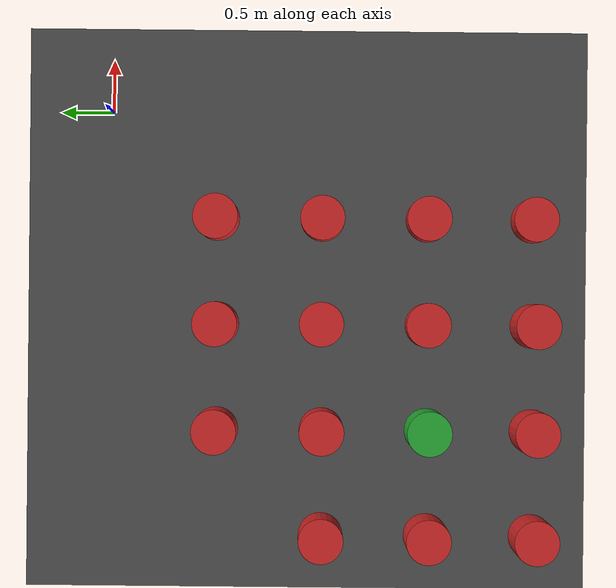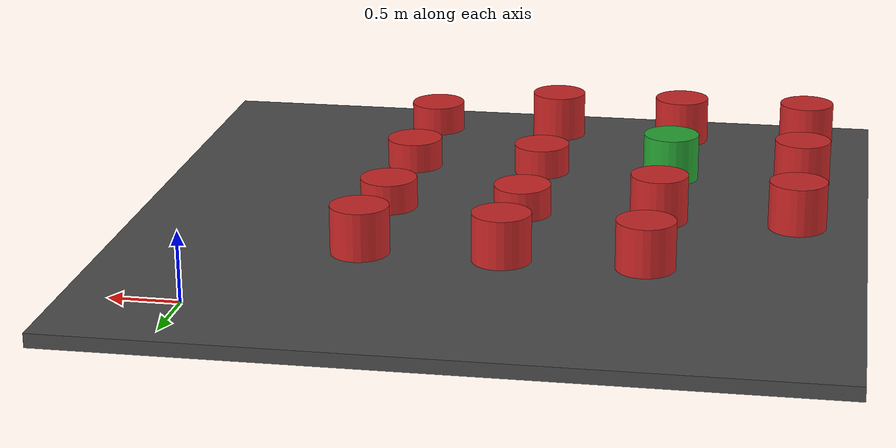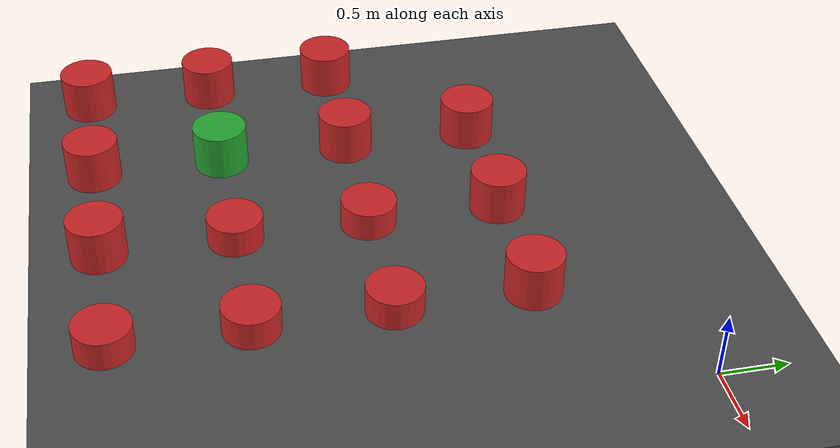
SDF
<sdf version="1.4">
 <world name="default">
  <light name="sun" type="directional">
   <pose>0 0 10 0 -0 0</pose>
   <diffuse>0.8 0.8 0.8 1</diffuse>
   <specular>0.2 0.2 0.2 1</specular>
   <attenuation>
    <range>1000</range>
    <constant>0.9</constant>
    <linear>0.01</linear>
    <quadratic>0.001</quadratic>
   </attenuation>
   <direction>-0.5 0.1 -0.9</direction>
  </light>
  <model name="ground_plane">
   <static>1</static>
   <link name="link">
    <collision name="collision">
     <geometry><plane><normal>0 0 1</normal><size>100 100</size></plane></geometry>
     <surface><friction><ode><mu>100</mu><mu2>50</mu2></ode></friction></surface>
    </collision>
    <visual name="visual">
     <cast_shadows>0</cast_shadows>
     <geometry><plane><normal>0 0 1</normal><size>100 100</size></plane></geometry>
     <material>
      <script><uri>file://media/materials/scripts/gazebo.material</uri><name>Gazebo/Grey</name></script>
     </material>
    </visual>
    <velocity_decay><linear>0</linear><angular>0</angular></velocity_decay>
   </link>
  </model>
  <physics type="ode">
   <max_step_size>0.001</max_step_size>
   <real_time_factor>1</real_time_factor>
   <real_time_update_rate>1000</real_time_update_rate>
   <gravity>0 0 -9.8</gravity>
  </physics>
  <scene><ambient>0.4 0.4 0.4 1</ambient><background>0.7 0.7 0.7 1</background><shadows>1</shadows></scene>
  <spherical_coordinates>
   <surface_model>EARTH_WGS84</surface_model>
   <latitude_deg>0</latitude_deg>
   <longitude_deg>0</longitude_deg>
   <elevation>0</elevation>
   <heading_deg>0</heading_deg>
  </spherical_coordinates>
  <model name="movable_2">
   <link name="link">
    <pose>0 0 0.23 0 -0 0</pose>
    <collision name="collision">
     <geometry><cylinder><radius>0.0001</radius><length>0.001</length></cylinder></geometry>
    </collision>
    <visual name="visual">
     <geometry><cylinder><radius>0.21</radius><length>0.45</length></cylinder></geometry>
     <material>
      <script><uri>file://media/materials/scripts/gazebo.material</uri><name>Gazebo/Red</name></script>
     </material>
    </visual>
    <velocity_decay><linear>0</linear><angular>0</angular></velocity_decay>
    <inertial>
     <inertia><ixx>1</ixx><ixy>0</ixy><ixz>0</ixz><iyy>1</iyy><iyz>0</iyz><izz>1</izz></inertia>
     <mass>1</mass>
    </inertial>
   </link>
   <pose>-1.00145 -4.00351 -0.179477 -0.015299 0.006306 -4.8e-05</pose>
   <static>0</static>
  </model>
  <model name="movable_3">
   <link name="link">
    <pose>0 0 0.23 0 -0 0</pose>
    <collision name="collision">
     <geometry><cylinder><radius>0.0001</radius><length>0.001</length></cylinder></geometry>
    </collision>
    <visual name="visual">
     <geometry><cylinder><radius>0.21</radius><length>0.45</length></cylinder></geometry>
     <material>
      <script><uri>file://media/materials/scripts/gazebo.material</uri><name>Gazebo/Red</name></script>
     </material>
    </visual>
    <velocity_decay><linear>0</linear><angular>0</angular></velocity_decay>
    <inertial>
     <inertia><ixx>1</ixx><ixy>0</ixy><ixz>0</ixz><iyy>1</iyy><iyz>0</iyz><izz>1</izz></inertia>
     <mass>1</mass>
    </inertial>
   </link>
   <pose>-1.00142 -3.00342 -0.179469 -0.014892 0.006172 -4.5e-05</pose>
   <static>0</static>
  </model>
  <model name="movable_4">
   <link name="link">
    <pose>0 0 0.23 0 -0 0</pose>
    <collision name="collision">
     <geometry><cylinder><radius>0.0001</radius><length>0.001</length></cylinder></geometry>
    </collision>
    <visual name="visual">
     <geometry><cylinder><radius>0.21</radius><length>0.45</length></cylinder></geometry>
     <material>
      <script><uri>file://media/materials/scripts/gazebo.material</uri><name>Gazebo/Red</name></script>
     </material>
    </visual>
    <velocity_decay><linear>0</linear><angular>0</angular></velocity_decay>
    <inertial>
     <inertia><ixx>1</ixx><ixy>0</ixy><ixz>0</ixz><iyy>1</iyy><iyz>0</iyz><izz>1</izz></inertia>
     <mass>1</mass>
    </inertial>
   </link>
   <pose>-1.00144 -2.00348 -0.179477 -0.015184 0.006271 -4.7e-05</pose>
   <static>0</static>
  </model>
  <model name="movable_0">
   <link name="link">
    <pose>0 0 0.23 0 -0 0</pose>
    <collision name="collision">
     <geometry><cylinder><radius>0.0001</radius><length>0.001</length></cylinder></geometry>
    </collision>
    <visual name="visual">
     <geometry><cylinder><radius>0.21</radius><length>0.45</length></cylinder></geometry>
     <material>
      <script><uri>file://media/materials/scripts/gazebo.material</uri><name>Gazebo/Red</name></script>
     </material>
    </visual>
    <velocity_decay><linear>0</linear><angular>0</angular></velocity_decay>
    <inertial>
     <inertia><ixx>1</ixx><ixy>0</ixy><ixz>0</ixz><iyy>1</iyy><iyz>0</iyz><izz>1</izz></inertia>
     <mass>1</mass>
    </inertial>
   </link>
   <pose>-2.00144 -3.00346 -0.179478 -0.015069 0.006274 -4.6e-05</pose>
   <static>0</static>
  </model>
  <model name="movable">
   <link name="link">
    <pose>0 0 0.23 0 -0 0</pose>
    <collision name="collision">
     <geometry><cylinder><radius>0.0001</radius><length>0.001</length></cylinder></geometry>
    </collision>
    <visual name="visual">
     <geometry><cylinder><radius>0.21</radius><length>0.45</length></cylinder></geometry>
     <material>
      <script><uri>file://media/materials/scripts/gazebo.material</uri><name>Gazebo/Red</name></script>
     </material>
    </visual>
    <velocity_decay><linear>0</linear><angular>0</angular></velocity_decay>
    <inertial>
     <inertia><ixx>1</ixx><ixy>0</ixy><ixz>0</ixz><iyy>1</iyy><iyz>0</iyz><izz>1</izz></inertia>
     <mass>1</mass>
    </inertial>
   </link>
   <pose>-2.00262 -2.00631 -0.179405 -0.027508 0.011394 -0.000156</pose>
   <static>0</static>
  </model>
  <model name="asphalt_plane">
   <static>1</static>
   <link name="link">
    <collision name="collision"><geometry><box><size>20 20 0.1</size></box></geometry></collision>
    <visual name="visual">
     <cast_shadows>0</cast_shadows>
     <geometry><box><size>20 20 0.1</size></box></geometry>
     <material>
      <script>
       <uri>model://asphalt_plane/materials/scripts</uri>
       <uri>model://asphalt_plane/materials/textures</uri>
       <name>vrc/asphalt</name>
      </script>
     </material>
    </visual>
    <velocity_decay><linear>0</linear><angular>0</angular></velocity_decay>
   </link>
  </model>
  <model name="coke_can">
   <pose>-3.00026 -2.99982 0.225008 -3.4e-05 -2e-05 -4e-06</pose>
   <link name="gl_">
    <collision name="collision">
     <geometry><cylinder><radius>0.21</radius><length>0.35</length></cylinder></geometry>
    </collision>
    <visual name="visual">
     <geometry><cylinder><radius>0.21</radius><length>0.35</length></cylinder></geometry>
     <material>
      <script><uri>file://media/materials/scripts/gazebo.material</uri><name>Gazebo/Green</name></script>
     </material>
    </visual>
    <velocity_decay><linear>0</linear><angular>0</angular></velocity_decay>
    <inertial>
     <inertia><ixx>1</ixx><ixy>0</ixy><ixz>0</ixz><iyy>1</iyy><iyz>0</iyz><izz>1</izz></inertia>
     <mass>1</mass>
    </inertial>
   </link>
   <static>0</static>
  </model>
  <model name="coke_can_0">
   <pose>-1.00026 -0.999819 0.225007 -3.3e-05 7e-06 -6e-06</pose>
   <link name="gl_">
    <collision name="collision">
     <geometry><cylinder><radius>0.21</radius><length>0.35</length></cylinder></geometry>
    </collision>
    <visual name="visual">
     <geometry><cylinder><radius>0.21</radius><length>0.35</length></cylinder></geometry>
     <material>
      <script><uri>file://media/materials/scripts/gazebo.material</uri><name>Gazebo/Red</name></script>
     </material>
    </visual>
    <velocity_decay><linear>0</linear><angular>0</angular></velocity_decay>
    <inertial>
     <inertia><ixx>1</ixx><ixy>0</ixy><ixz>0</ixz><iyy>1</iyy><iyz>0</iyz><izz>1</izz></inertia>
     <mass>1</mass>
    </inertial>
   </link>
   <static>0</static>
  </model>
  <model name="coke_can_1">
   <pose>-2.00026 -0.999819 0.224997 -3.2e-05 1.1e-05 -8e-06</pose>
   <link name="gl_">
    <collision name="collision">
     <geometry><cylinder><radius>0.21</radius><length>0.35</length></cylinder></geometry>
    </collision>
    <visual name="visual">
     <geometry><cylinder><radius>0.21</radius><length>0.35</length></cylinder></geometry>
     <material>
      <script><uri>file://media/materials/scripts/gazebo.material</uri><name>Gazebo/Red</name></script>
     </material>
    </visual>
    <velocity_decay><linear>0</linear><angular>0</angular></velocity_decay>
    <inertial>
     <inertia><ixx>1</ixx><ixy>0</ixy><ixz>0</ixz><iyy>1</iyy><iyz>0</iyz><izz>1</izz></inertia>
     <mass>1</mass>
    </inertial>
   </link>
   <static>0</static>
  </model>
  <model name="coke_can_2">
   <pose>-3.00026 -1.99982 0.225007 -3.2e-05 1e-05 -1e-05</pose>
   <link name="gl_">
    <collision name="collision">
     <geometry><cylinder><radius>0.21</radius><length>0.35</length></cylinder></geometry>
    </collision>
    <visual name="visual">
     <geometry><cylinder><radius>0.21</radius><length>0.35</length></cylinder></geometry>
     <material>
      <script><uri>file://media/materials/scripts/gazebo.material</uri><name>Gazebo/Red</name></script>
     </material>
    </visual>
    <velocity_decay><linear>0</linear><angular>0</angular></velocity_decay>
    <inertial>
     <inertia><ixx>1</ixx><ixy>0</ixy><ixz>0</ixz><iyy>1</iyy><iyz>0</iyz><izz>1</izz></inertia>
     <mass>1</mass>
    </inertial>
   </link>
   <static>0</static>
  </model>
  <model name="coke_can_3">
   <pose>-2.00026 -3.99982 0.224998 -3.2e-05 -2.2e-05 -1.1e-05</pose>
   <link name="gl_">
    <collision name="collision">
     <geometry><cylinder><radius>0.21</radius><length>0.35</length></cylinder></geometry>
    </collision>
    <visual name="visual">
     <geometry><cylinder><radius>0.21</radius><length>0.35</length></cylinder></geometry>
     <material>
      <script><uri>file://media/materials/scripts/gazebo.material</uri><name>Gazebo/Red</name></script>
     </material>
    </visual>
    <velocity_decay><linear>0</linear><angular>0</angular></velocity_decay>
    <inertial>
     <inertia><ixx>1</ixx><ixy>0</ixy><ixz>0</ixz><iyy>1</iyy><iyz>0</iyz><izz>1</izz></inertia>
     <mass>1</mass>
    </inertial>
   </link>
   <static>0</static>
  </model>
  <model name="coke_can_4">
   <pose>-3.00026 -3.99982 0.224994 -1.7e-05 1e-05 -1.4e-05</pose>
   <link name="gl_">
    <collision name="collision">
     <geometry><cylinder><radius>0.21</radius><length>0.35</length></cylinder></geometry>
    </collision>
    <visual name="visual">
     <geometry><cylinder><radius>0.21</radius><length>0.35</length></cylinder></geometry>
     <material>
      <script><uri>file://media/materials/scripts/gazebo.material</uri><name>Gazebo/Red</name></script>
     </material>
    </visual>
    <velocity_decay><linear>0</linear><angular>0</angular></velocity_decay>
    <inertial>
     <inertia><ixx>1</ixx><ixy>0</ixy><ixz>0</ixz><iyy>1</iyy><iyz>0</iyz><izz>1</izz></inertia>
     <mass>1</mass>
    </inertial>
   </link>
   <static>0</static>
  </model>
  <model name="coke_can_5">
   <pose>-4.00026 -2.99982 0.224997 -2.8e-05 -1.9e-05 -1.7e-05</pose>
   <link name="gl_">
    <collision name="collision">
     <geometry><cylinder><radius>0.21</radius><length>0.35</length></cylinder></geometry>
    </collision>
    <visual name="visual">
     <geometry><cylinder><radius>0.21</radius><length>0.35</length></cylinder></geometry>
     <material>
      <script><uri>file://media/materials/scripts/gazebo.material</uri><name>Gazebo/Red</name></script>
     </material>
    </visual>
    <velocity_decay><linear>0</linear><angular>0</angular></velocity_decay>
    <inertial>
     <inertia><ixx>1</ixx><ixy>0</ixy><ixz>0</ixz><iyy>1</iyy><iyz>0</iyz><izz>1</izz></inertia>
     <mass>1</mass>
    </inertial>
   </link>
   <static>0</static>
  </model>
  <model name="coke_can_6">
   <pose>-4.00026 -1.99982 0.225008 -3.8e-05 -1.3e-05 -1.9e-05</pose>
   <link name="gl_">
    <collision name="collision">
     <geometry><cylinder><radius>0.21</radius><length>0.35</length></cylinder></geometry>
    </collision>
    <visual name="visual">
     <geometry><cylinder><radius>0.21</radius><length>0.35</length></cylinder></geometry>
     <material>
      <script><uri>file://media/materials/scripts/gazebo.material</uri><name>Gazebo/Red</name></script>
     </material>
    </visual>
    <velocity_decay><linear>0</linear><angular>0</angular></velocity_decay>
    <inertial>
     <inertia><ixx>1</ixx><ixy>0</ixy><ixz>0</ixz><iyy>1</iyy><iyz>0</iyz><izz>1</izz></inertia>
     <mass>1</mass>
    </inertial>
   </link>
   <static>0</static>
  </model>
  <model name="coke_can_7">
   <pose>-3.00027 -0.99982 0.224998 -3.2e-05 -2.2e-05 -2.1e-05</pose>
   <link name="gl_">
    <collision name="collision">
     <geometry><cylinder><radius>0.21</radius><length>0.35</length></cylinder></geometry>
    </collision>
    <visual name="visual">
     <geometry><cylinder><radius>0.21</radius><length>0.35</length></cylinder></geometry>
     <material>
      <script><uri>file://media/materials/scripts/gazebo.material</uri><name>Gazebo/Red</name></script>
     </material>
    </visual>
    <velocity_decay><linear>0</linear><angular>0</angular></velocity_decay>
    <inertial>
     <inertia><ixx>1</ixx><ixy>0</ixy><ixz>0</ixz><iyy>1</iyy><iyz>0</iyz><izz>1</izz></inertia>
     <mass>1</mass>
    </inertial>
   </link>
   <static>0</static>
  </model>
  <model name="coke_can_8">
   <pose>-4.00026 -3.99982 0.224998 -3.2e-05 -2.2e-05 -2.3e-05</pose>
   <link name="gl_">
    <collision name="collision">
     <geometry><cylinder><radius>0.21</radius><length>0.35</length></cylinder></geometry>
    </collision>
    <visual name="visual">
     <geometry><cylinder><radius>0.21</radius><length>0.35</length></cylinder></geometry>
     <material>
      <script><uri>file://media/materials/scripts/gazebo.material</uri><name>Gazebo/Red</name></script>
     </material>
    </visual>
    <velocity_decay><linear>0</linear><angular>0</angular></velocity_decay>
    <inertial>
     <inertia><ixx>1</ixx><ixy>0</ixy><ixz>0</ixz><iyy>1</iyy><iyz>0</iyz><izz>1</izz></inertia>
     <mass>1</mass>
    </inertial>
   </link>
   <static>0</static>
  </model>
 </world>
</sdf>
